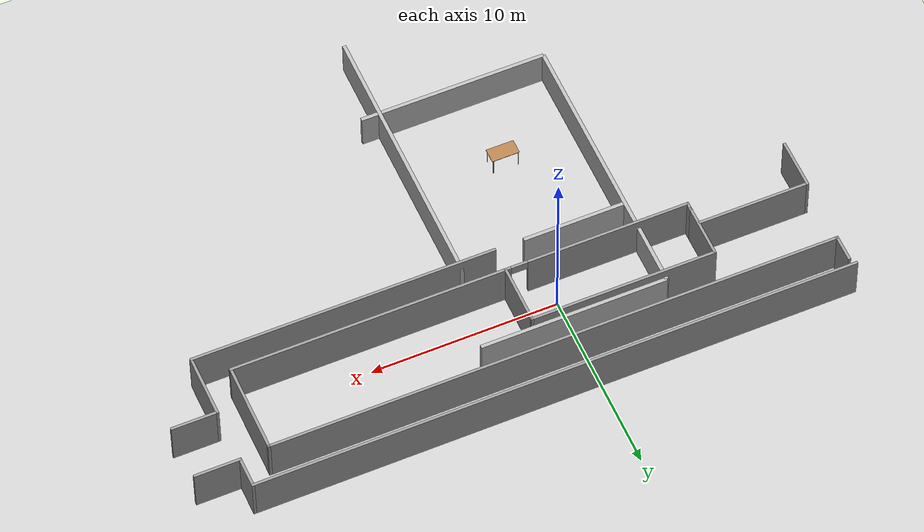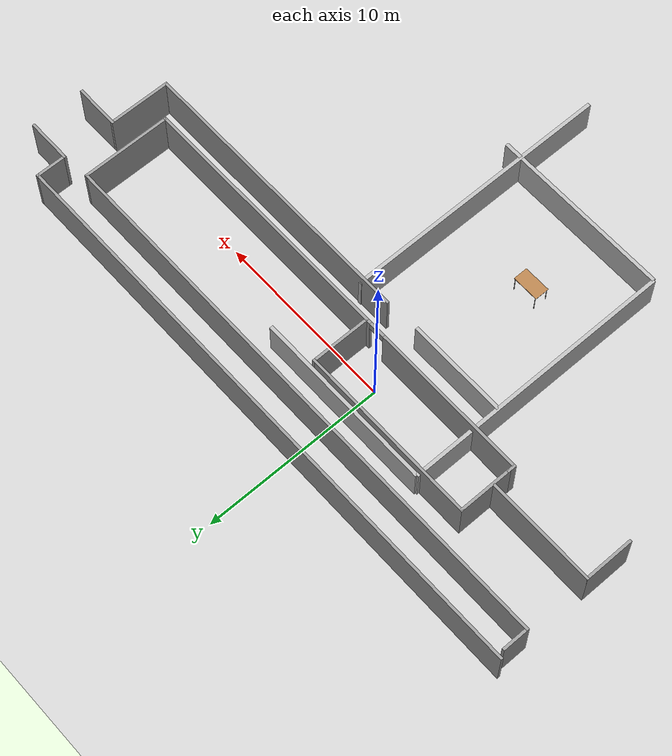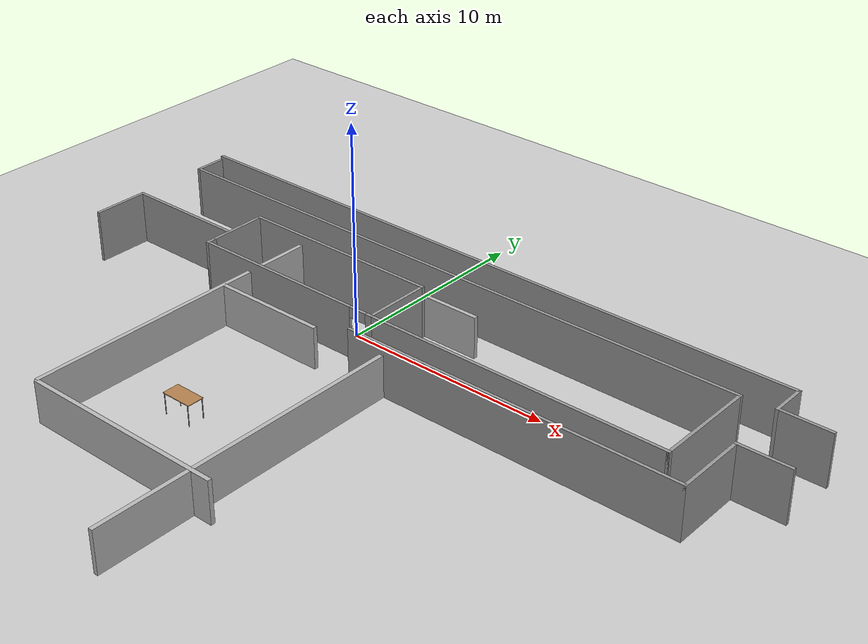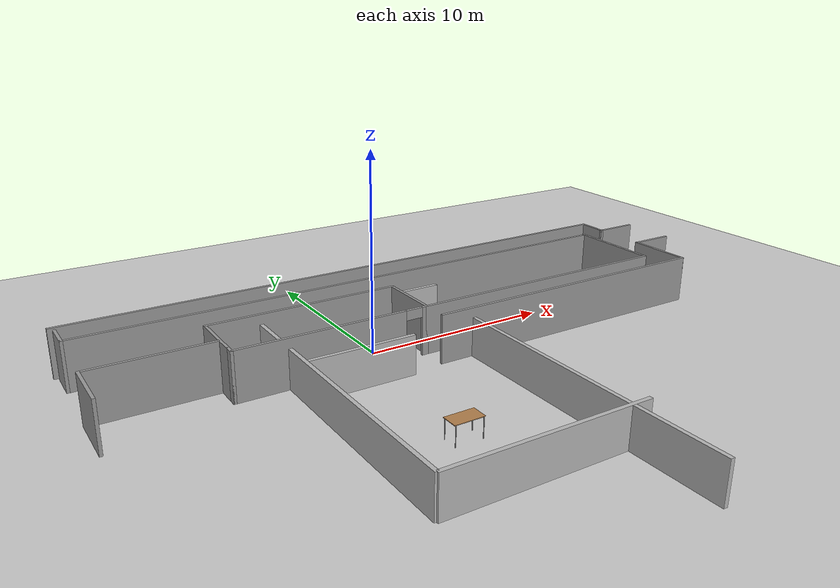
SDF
<sdf version="1.6">
 <world name="default">
  <model name="ground_plane">
   <static>1</static>
   <link name="link">
    <collision name="collision">
     <geometry><plane><normal>0 0 1</normal><size>100 100</size></plane></geometry>
     <surface><friction><ode><mu>100</mu><mu2>50</mu2></ode></friction></surface>
    </collision>
    <visual name="visual">
     <cast_shadows>0</cast_shadows>
     <geometry><plane><normal>0 0 1</normal><size>100 100</size></plane></geometry>
     <material>
      <script><uri>file://media/materials/scripts/gazebo.material</uri><name>Gazebo/Grey</name></script>
     </material>
    </visual>
   </link>
  </model>
  <model name="Untitled">
   <link name="Wall_20">
    <pose>-2.30407 -1.00044 0 0 -0 1.5708</pose>
    <visual name="Wall_20_Visual">
     <pose>0 0 1.25 0 -0 0</pose>
     <geometry><box><size>3.25 0.15 2.5</size></box></geometry>
     <material>
      <script><uri>file://media/materials/scripts/gazebo.material</uri><name>Gazebo/Grey</name></script>
      <ambient>1 1 1 1</ambient>
      <shader type="pixel"/>
      <diffuse>0.7 0.7 0.7 1</diffuse>
      <specular>0.01 0.01 0.01 1</specular>
      <emissive>0 0 0 1</emissive>
     </material>
     <meta><layer>0</layer></meta>
    </visual>
    <collision name="Wall_20_Collision">
     <pose>0 0 1.25 0 -0 0</pose>
     <geometry><box><size>3.25 0.15 2.5</size></box></geometry>
     <surface>
      <friction>
       <ode><mu>1</mu><mu2>1</mu2><fdir1>0 0 0</fdir1><slip1>0</slip1><slip2>0</slip2></ode>
       <torsional>
        <coefficient>1</coefficient>
        <patch_radius>0</patch_radius>
        <surface_radius>0</surface_radius>
        <use_patch_radius>1</use_patch_radius>
        <ode><slip>0</slip></ode>
       </torsional>
      </friction>
      <bounce><restitution_coefficient>0</restitution_coefficient><threshold>1e+06</threshold></bounce>
      <contact>
       <collide_without_contact>0</collide_without_contact>
       <collide_without_contact_bitmask>1</collide_without_contact_bitmask>
       <collide_bitmask>1</collide_bitmask>
       <ode>
        <soft_cfm>0</soft_cfm>
        <soft_erp>0.2</soft_erp>
        <kp>1e+13</kp>
        <kd>1</kd>
        <max_vel>0.01</max_vel>
        <min_depth>0</min_depth>
       </ode>
       <bullet>
        <split_impulse>1</split_impulse>
        <split_impulse_penetration_threshold>-0.01</split_impulse_penetration_threshold>
        <soft_cfm>0</soft_cfm>
        <soft_erp>0.2</soft_erp>
        <kp>1e+13</kp>
        <kd>1</kd>
       </bullet>
      </contact>
     </surface>
    </collision>
   </link>
   <link name="Wall_21">
    <pose>-7.22907 0.549559 0 0 -0 3.14159</pose>
    <visual name="Wall_21_Visual">
     <pose>0 0 1.25 0 -0 0</pose>
     <geometry><box><size>10 0.15 2.5</size></box></geometry>
     <material>
      <script><uri>file://media/materials/scripts/gazebo.material</uri><name>Gazebo/Grey</name></script>
      <ambient>1 1 1 1</ambient>
      <shader type="pixel"/>
      <diffuse>0.7 0.7 0.7 1</diffuse>
      <specular>0.01 0.01 0.01 1</specular>
      <emissive>0 0 0 1</emissive>
     </material>
     <meta><layer>0</layer></meta>
    </visual>
    <collision name="Wall_21_Collision">
     <pose>0 0 1.25 0 -0 0</pose>
     <geometry><box><size>10 0.15 2.5</size></box></geometry>
     <surface>
      <friction>
       <ode><mu>1</mu><mu2>1</mu2><fdir1>0 0 0</fdir1><slip1>0</slip1><slip2>0</slip2></ode>
       <torsional>
        <coefficient>1</coefficient>
        <patch_radius>0</patch_radius>
        <surface_radius>0</surface_radius>
        <use_patch_radius>1</use_patch_radius>
        <ode><slip>0</slip></ode>
       </torsional>
      </friction>
      <bounce><restitution_coefficient>0</restitution_coefficient><threshold>1e+06</threshold></bounce>
      <contact>
       <collide_without_contact>0</collide_without_contact>
       <collide_without_contact_bitmask>1</collide_without_contact_bitmask>
       <collide_bitmask>1</collide_bitmask>
       <ode>
        <soft_cfm>0</soft_cfm>
        <soft_erp>0.2</soft_erp>
        <kp>1e+13</kp>
        <kd>1</kd>
        <max_vel>0.01</max_vel>
        <min_depth>0</min_depth>
       </ode>
       <bullet>
        <split_impulse>1</split_impulse>
        <split_impulse_penetration_threshold>-0.01</split_impulse_penetration_threshold>
        <soft_cfm>0</soft_cfm>
        <soft_erp>0.2</soft_erp>
        <kp>1e+13</kp>
        <kd>1</kd>
       </bullet>
      </contact>
     </surface>
    </collision>
   </link>
   <link name="Wall_22">
    <pose>-12.1541 -0.875442 0 0 0 -1.5708</pose>
    <visual name="Wall_22_Visual">
     <pose>0 0 1.25 0 -0 0</pose>
     <geometry><box><size>3 0.15 2.5</size></box></geometry>
     <material>
      <script><uri>file://media/materials/scripts/gazebo.material</uri><name>Gazebo/Grey</name></script>
      <ambient>1 1 1 1</ambient>
      <shader type="pixel"/>
      <diffuse>0.7 0.7 0.7 1</diffuse>
      <specular>0.01 0.01 0.01 1</specular>
      <emissive>0 0 0 1</emissive>
     </material>
     <meta><layer>0</layer></meta>
    </visual>
    <collision name="Wall_22_Collision">
     <pose>0 0 1.25 0 -0 0</pose>
     <geometry><box><size>3 0.15 2.5</size></box></geometry>
     <surface>
      <friction>
       <ode><mu>1</mu><mu2>1</mu2><fdir1>0 0 0</fdir1><slip1>0</slip1><slip2>0</slip2></ode>
       <torsional>
        <coefficient>1</coefficient>
        <patch_radius>0</patch_radius>
        <surface_radius>0</surface_radius>
        <use_patch_radius>1</use_patch_radius>
        <ode><slip>0</slip></ode>
       </torsional>
      </friction>
      <bounce><restitution_coefficient>0</restitution_coefficient><threshold>1e+06</threshold></bounce>
      <contact>
       <collide_without_contact>0</collide_without_contact>
       <collide_without_contact_bitmask>1</collide_without_contact_bitmask>
       <collide_bitmask>1</collide_bitmask>
       <ode>
        <soft_cfm>0</soft_cfm>
        <soft_erp>0.2</soft_erp>
        <kp>1e+13</kp>
        <kd>1</kd>
        <max_vel>0.01</max_vel>
        <min_depth>0</min_depth>
       </ode>
       <bullet>
        <split_impulse>1</split_impulse>
        <split_impulse_penetration_threshold>-0.01</split_impulse_penetration_threshold>
        <soft_cfm>0</soft_cfm>
        <soft_erp>0.2</soft_erp>
        <kp>1e+13</kp>
        <kd>1</kd>
       </bullet>
      </contact>
     </surface>
    </collision>
   </link>
   <link name="Wall_23">
    <pose>-12.1541 -2.47544 0 0 0 -1.5708</pose>
    <visual name="Wall_23_Visual">
     <pose>0 0 1.25 0 -0 0</pose>
     <geometry><box><size>0.5 0.15 2.5</size></box></geometry>
     <material>
      <script><uri>file://media/materials/scripts/gazebo.material</uri><name>Gazebo/Grey</name></script>
      <ambient>1 1 1 1</ambient>
      <shader type="pixel"/>
      <diffuse>0.7 0.7 0.7 1</diffuse>
      <specular>0.01 0.01 0.01 1</specular>
      <emissive>0 0 0 1</emissive>
     </material>
     <meta><layer>0</layer></meta>
    </visual>
    <collision name="Wall_23_Collision">
     <pose>0 0 1.25 0 -0 0</pose>
     <geometry><box><size>0.5 0.15 2.5</size></box></geometry>
     <surface>
      <friction>
       <ode><mu>1</mu><mu2>1</mu2><fdir1>0 0 0</fdir1><slip1>0</slip1><slip2>0</slip2></ode>
       <torsional>
        <coefficient>1</coefficient>
        <patch_radius>0</patch_radius>
        <surface_radius>0</surface_radius>
        <use_patch_radius>1</use_patch_radius>
        <ode><slip>0</slip></ode>
       </torsional>
      </friction>
      <bounce><restitution_coefficient>0</restitution_coefficient><threshold>1e+06</threshold></bounce>
      <contact>
       <collide_without_contact>0</collide_without_contact>
       <collide_without_contact_bitmask>1</collide_without_contact_bitmask>
       <collide_bitmask>1</collide_bitmask>
       <ode>
        <soft_cfm>0</soft_cfm>
        <soft_erp>0.2</soft_erp>
        <kp>1e+13</kp>
        <kd>1</kd>
        <max_vel>0.01</max_vel>
        <min_depth>0</min_depth>
       </ode>
       <bullet>
        <split_impulse>1</split_impulse>
        <split_impulse_penetration_threshold>-0.01</split_impulse_penetration_threshold>
        <soft_cfm>0</soft_cfm>
        <soft_erp>0.2</soft_erp>
        <kp>1e+13</kp>
        <kd>1</kd>
       </bullet>
      </contact>
     </surface>
    </collision>
   </link>
   <link name="Wall_24">
    <pose>-7.22907 -2.65044 0 0 -0 0</pose>
    <visual name="Wall_24_Visual_1">
     <pose>4.82444 0 1.25 0 -0 0</pose>
     <geometry><box><size>0.351111 0.15 2.5</size></box></geometry>
     <material>
      <script><uri>file://media/materials/scripts/gazebo.material</uri><name>Gazebo/Grey</name></script>
      <ambient>1 1 1 1</ambient>
      <shader type="pixel"/>
      <diffuse>0.7 0.7 0.7 1</diffuse>
      <specular>0.01 0.01 0.01 1</specular>
      <emissive>0 0 0 1</emissive>
     </material>
     <meta><layer>0</layer></meta>
    </visual>
    <visual name="Wall_24_Visual_2">
     <pose>4.19889 0 2.25 0 -0 0</pose>
     <geometry><box><size>0.9 0.15 0.5</size></box></geometry>
     <material>
      <script><uri>file://media/materials/scripts/gazebo.material</uri><name>Gazebo/Grey</name></script>
      <ambient>1 1 1 1</ambient>
      <shader type="pixel"/>
      <diffuse>0.7 0.7 0.7 1</diffuse>
      <specular>0.01 0.01 0.01 1</specular>
      <emissive>0 0 0 1</emissive>
     </material>
     <meta><layer>0</layer></meta>
    </visual>
    <visual name="Wall_24_Visual_0">
     <pose>-0.625555 0 1.25 0 -0 0</pose>
     <geometry><box><size>8.74889 0.15 2.5</size></box></geometry>
     <material>
      <script><uri>file://media/materials/scripts/gazebo.material</uri><name>Gazebo/Grey</name></script>
      <ambient>1 1 1 1</ambient>
      <shader type="pixel"/>
      <diffuse>0.7 0.7 0.7 1</diffuse>
      <specular>0.01 0.01 0.01 1</specular>
      <emissive>0 0 0 1</emissive>
     </material>
     <meta><layer>0</layer></meta>
    </visual>
    <collision name="Wall_24_Collision_2">
     <pose>4.19889 0 2.25 0 -0 0</pose>
     <geometry><box><size>0.9 0.15 0.5</size></box></geometry>
     <surface>
      <friction>
       <ode><mu>1</mu><mu2>1</mu2><fdir1>0 0 0</fdir1><slip1>0</slip1><slip2>0</slip2></ode>
       <torsional>
        <coefficient>1</coefficient>
        <patch_radius>0</patch_radius>
        <surface_radius>0</surface_radius>
        <use_patch_radius>1</use_patch_radius>
        <ode><slip>0</slip></ode>
       </torsional>
      </friction>
      <bounce><restitution_coefficient>0</restitution_coefficient><threshold>1e+06</threshold></bounce>
      <contact>
       <collide_without_contact>0</collide_without_contact>
       <collide_without_contact_bitmask>1</collide_without_contact_bitmask>
       <collide_bitmask>1</collide_bitmask>
       <ode>
        <soft_cfm>0</soft_cfm>
        <soft_erp>0.2</soft_erp>
        <kp>1e+13</kp>
        <kd>1</kd>
        <max_vel>0.01</max_vel>
        <min_depth>0</min_depth>
       </ode>
       <bullet>
        <split_impulse>1</split_impulse>
        <split_impulse_penetration_threshold>-0.01</split_impulse_penetration_threshold>
        <soft_cfm>0</soft_cfm>
        <soft_erp>0.2</soft_erp>
        <kp>1e+13</kp>
        <kd>1</kd>
       </bullet>
      </contact>
     </surface>
    </collision>
    <collision name="Wall_24_Collision_0">
     <pose>-0.625555 0 1.25 0 -0 0</pose>
     <geometry><box><size>8.74889 0.15 2.5</size></box></geometry>
     <surface>
      <friction>
       <ode><mu>1</mu><mu2>1</mu2><fdir1>0 0 0</fdir1><slip1>0</slip1><slip2>0</slip2></ode>
       <torsional>
        <coefficient>1</coefficient>
        <patch_radius>0</patch_radius>
        <surface_radius>0</surface_radius>
        <use_patch_radius>1</use_patch_radius>
        <ode><slip>0</slip></ode>
       </torsional>
      </friction>
      <bounce><restitution_coefficient>0</restitution_coefficient><threshold>1e+06</threshold></bounce>
      <contact>
       <collide_without_contact>0</collide_without_contact>
       <collide_without_contact_bitmask>1</collide_without_contact_bitmask>
       <collide_bitmask>1</collide_bitmask>
       <ode>
        <soft_cfm>0</soft_cfm>
        <soft_erp>0.2</soft_erp>
        <kp>1e+13</kp>
        <kd>1</kd>
        <max_vel>0.01</max_vel>
        <min_depth>0</min_depth>
       </ode>
       <bullet>
        <split_impulse>1</split_impulse>
        <split_impulse_penetration_threshold>-0.01</split_impulse_penetration_threshold>
        <soft_cfm>0</soft_cfm>
        <soft_erp>0.2</soft_erp>
        <kp>1e+13</kp>
        <kd>1</kd>
       </bullet>
      </contact>
     </surface>
    </collision>
    <collision name="Wall_24_Collision_1">
     <pose>4.82444 0 1.25 0 -0 0</pose>
     <geometry><box><size>0.351111 0.15 2.5</size></box></geometry>
     <surface>
      <friction>
       <ode><mu>1</mu><mu2>1</mu2><fdir1>0 0 0</fdir1><slip1>0</slip1><slip2>0</slip2></ode>
       <torsional>
        <coefficient>1</coefficient>
        <patch_radius>0</patch_radius>
        <surface_radius>0</surface_radius>
        <use_patch_radius>1</use_patch_radius>
        <ode><slip>0</slip></ode>
       </torsional>
      </friction>
      <bounce><restitution_coefficient>0</restitution_coefficient><threshold>1e+06</threshold></bounce>
      <contact>
       <collide_without_contact>0</collide_without_contact>
       <collide_without_contact_bitmask>1</collide_without_contact_bitmask>
       <collide_bitmask>1</collide_bitmask>
       <ode>
        <soft_cfm>0</soft_cfm>
        <soft_erp>0.2</soft_erp>
        <kp>1e+13</kp>
        <kd>1</kd>
        <max_vel>0.01</max_vel>
        <min_depth>0</min_depth>
       </ode>
       <bullet>
        <split_impulse>1</split_impulse>
        <split_impulse_penetration_threshold>-0.01</split_impulse_penetration_threshold>
        <soft_cfm>0</soft_cfm>
        <soft_erp>0.2</soft_erp>
        <kp>1e+13</kp>
        <kd>1</kd>
       </bullet>
      </contact>
     </surface>
    </collision>
   </link>
   <link name="Wall_29">
    <pose>-18.1117 -2.66327 0 0 -0 1.5708</pose>
    <visual name="Wall_29_Visual">
     <pose>0 0 1.25 0 -0 0</pose>
     <geometry><box><size>2.75 0.15 2.5</size></box></geometry>
     <material>
      <script><uri>file://media/materials/scripts/gazebo.material</uri><name>Gazebo/Grey</name></script>
      <ambient>1 1 1 1</ambient>
      <shader type="pixel"/>
      <diffuse>0.7 0.7 0.7 1</diffuse>
      <specular>0.01 0.01 0.01 1</specular>
      <emissive>0 0 0 1</emissive>
     </material>
     <meta><layer>0</layer></meta>
    </visual>
    <collision name="Wall_29_Collision">
     <pose>0 0 1.25 0 -0 0</pose>
     <geometry><box><size>2.75 0.15 2.5</size></box></geometry>
     <surface>
      <friction>
       <ode><mu>1</mu><mu2>1</mu2><fdir1>0 0 0</fdir1><slip1>0</slip1><slip2>0</slip2></ode>
       <torsional>
        <coefficient>1</coefficient>
        <patch_radius>0</patch_radius>
        <surface_radius>0</surface_radius>
        <use_patch_radius>1</use_patch_radius>
        <ode><slip>0</slip></ode>
       </torsional>
      </friction>
      <bounce><restitution_coefficient>0</restitution_coefficient><threshold>1e+06</threshold></bounce>
      <contact>
       <collide_without_contact>0</collide_without_contact>
       <collide_without_contact_bitmask>1</collide_without_contact_bitmask>
       <collide_bitmask>1</collide_bitmask>
       <ode>
        <soft_cfm>0</soft_cfm>
        <soft_erp>0.2</soft_erp>
        <kp>1e+13</kp>
        <kd>1</kd>
        <max_vel>0.01</max_vel>
        <min_depth>0</min_depth>
       </ode>
       <bullet>
        <split_impulse>1</split_impulse>
        <split_impulse_penetration_threshold>-0.01</split_impulse_penetration_threshold>
        <soft_cfm>0</soft_cfm>
        <soft_erp>0.2</soft_erp>
        <kp>1e+13</kp>
        <kd>1</kd>
       </bullet>
      </contact>
     </surface>
    </collision>
   </link>
   <link name="Wall_30">
    <pose>-15.1867 -1.36327 0 0 -0 0</pose>
    <visual name="Wall_30_Visual">
     <pose>0 0 1.25 0 -0 0</pose>
     <geometry><box><size>6 0.15 2.5</size></box></geometry>
     <material>
      <script><uri>file://media/materials/scripts/gazebo.material</uri><name>Gazebo/Grey</name></script>
      <ambient>1 1 1 1</ambient>
      <shader type="pixel"/>
      <diffuse>0.7 0.7 0.7 1</diffuse>
      <specular>0.01 0.01 0.01 1</specular>
      <emissive>0 0 0 1</emissive>
     </material>
     <meta><layer>0</layer></meta>
    </visual>
    <collision name="Wall_30_Collision">
     <pose>0 0 1.25 0 -0 0</pose>
     <geometry><box><size>6 0.15 2.5</size></box></geometry>
     <surface>
      <friction>
       <ode><mu>1</mu><mu2>1</mu2><fdir1>0 0 0</fdir1><slip1>0</slip1><slip2>0</slip2></ode>
       <torsional>
        <coefficient>1</coefficient>
        <patch_radius>0</patch_radius>
        <surface_radius>0</surface_radius>
        <use_patch_radius>1</use_patch_radius>
        <ode><slip>0</slip></ode>
       </torsional>
      </friction>
      <bounce><restitution_coefficient>0</restitution_coefficient><threshold>1e+06</threshold></bounce>
      <contact>
       <collide_without_contact>0</collide_without_contact>
       <collide_without_contact_bitmask>1</collide_without_contact_bitmask>
       <collide_bitmask>1</collide_bitmask>
       <ode>
        <soft_cfm>0</soft_cfm>
        <soft_erp>0.2</soft_erp>
        <kp>1e+13</kp>
        <kd>1</kd>
        <max_vel>0.01</max_vel>
        <min_depth>0</min_depth>
       </ode>
       <bullet>
        <split_impulse>1</split_impulse>
        <split_impulse_penetration_threshold>-0.01</split_impulse_penetration_threshold>
        <soft_cfm>0</soft_cfm>
        <soft_erp>0.2</soft_erp>
        <kp>1e+13</kp>
        <kd>1</kd>
       </bullet>
      </contact>
     </surface>
    </collision>
   </link>
   <link name="Wall_41">
    <pose>5.78827 -3.96327 0 0 -0 0</pose>
    <visual name="Wall_41_Visual">
     <pose>0 0 1.25 0 -0 0</pose>
     <geometry><box><size>16.25 0.15 2.5</size></box></geometry>
     <material>
      <script><uri>file://media/materials/scripts/gazebo.material</uri><name>Gazebo/Grey</name></script>
      <ambient>1 1 1 1</ambient>
      <shader type="pixel"/>
      <diffuse>0.7 0.7 0.7 1</diffuse>
      <specular>0.01 0.01 0.01 1</specular>
      <emissive>0 0 0 1</emissive>
     </material>
     <meta><layer>0</layer></meta>
    </visual>
    <collision name="Wall_41_Collision">
     <pose>0 0 1.25 0 -0 0</pose>
     <geometry><box><size>16.25 0.15 2.5</size></box></geometry>
     <surface>
      <friction>
       <ode><mu>1</mu><mu2>1</mu2><fdir1>0 0 0</fdir1><slip1>0</slip1><slip2>0</slip2></ode>
       <torsional>
        <coefficient>1</coefficient>
        <patch_radius>0</patch_radius>
        <surface_radius>0</surface_radius>
        <use_patch_radius>1</use_patch_radius>
        <ode><slip>0</slip></ode>
       </torsional>
      </friction>
      <bounce><restitution_coefficient>0</restitution_coefficient><threshold>1e+06</threshold></bounce>
      <contact>
       <collide_without_contact>0</collide_without_contact>
       <collide_without_contact_bitmask>1</collide_without_contact_bitmask>
       <collide_bitmask>1</collide_bitmask>
       <ode>
        <soft_cfm>0</soft_cfm>
        <soft_erp>0.2</soft_erp>
        <kp>1e+13</kp>
        <kd>1</kd>
        <max_vel>0.01</max_vel>
        <min_depth>0</min_depth>
       </ode>
       <bullet>
        <split_impulse>1</split_impulse>
        <split_impulse_penetration_threshold>-0.01</split_impulse_penetration_threshold>
        <soft_cfm>0</soft_cfm>
        <soft_erp>0.2</soft_erp>
        <kp>1e+13</kp>
        <kd>1</kd>
       </bullet>
      </contact>
     </surface>
    </collision>
   </link>
   <link name="Wall_42">
    <pose>13.8383 -2.28827 0 0 -0 1.5708</pose>
    <visual name="Wall_42_Visual">
     <pose>0 0 1.25 0 -0 0</pose>
     <geometry><box><size>3.5 0.15 2.5</size></box></geometry>
     <material>
      <script><uri>file://media/materials/scripts/gazebo.material</uri><name>Gazebo/Grey</name></script>
      <ambient>1 1 1 1</ambient>
      <shader type="pixel"/>
      <diffuse>0.7 0.7 0.7 1</diffuse>
      <specular>0.01 0.01 0.01 1</specular>
      <emissive>0 0 0 1</emissive>
     </material>
     <meta><layer>0</layer></meta>
    </visual>
    <collision name="Wall_42_Collision">
     <pose>0 0 1.25 0 -0 0</pose>
     <geometry><box><size>3.5 0.15 2.5</size></box></geometry>
     <surface>
      <friction>
       <ode><mu>1</mu><mu2>1</mu2><fdir1>0 0 0</fdir1><slip1>0</slip1><slip2>0</slip2></ode>
       <torsional>
        <coefficient>1</coefficient>
        <patch_radius>0</patch_radius>
        <surface_radius>0</surface_radius>
        <use_patch_radius>1</use_patch_radius>
        <ode><slip>0</slip></ode>
       </torsional>
      </friction>
      <bounce><restitution_coefficient>0</restitution_coefficient><threshold>1e+06</threshold></bounce>
      <contact>
       <collide_without_contact>0</collide_without_contact>
       <collide_without_contact_bitmask>1</collide_without_contact_bitmask>
       <collide_bitmask>1</collide_bitmask>
       <ode>
        <soft_cfm>0</soft_cfm>
        <soft_erp>0.2</soft_erp>
        <kp>1e+13</kp>
        <kd>1</kd>
        <max_vel>0.01</max_vel>
        <min_depth>0</min_depth>
       </ode>
       <bullet>
        <split_impulse>1</split_impulse>
        <split_impulse_penetration_threshold>-0.01</split_impulse_penetration_threshold>
        <soft_cfm>0</soft_cfm>
        <soft_erp>0.2</soft_erp>
        <kp>1e+13</kp>
        <kd>1</kd>
       </bullet>
      </contact>
     </surface>
    </collision>
   </link>
   <link name="Wall_43">
    <pose>15.0133 -0.613272 0 0 -0 0</pose>
    <visual name="Wall_43_Visual">
     <pose>0 0 1.25 0 -0 0</pose>
     <geometry><box><size>2.5 0.15 2.5</size></box></geometry>
     <material>
      <script><uri>file://media/materials/scripts/gazebo.material</uri><name>Gazebo/Grey</name></script>
      <ambient>1 1 1 1</ambient>
      <shader type="pixel"/>
      <diffuse>0.7 0.7 0.7 1</diffuse>
      <specular>0.01 0.01 0.01 1</specular>
      <emissive>0 0 0 1</emissive>
     </material>
     <meta><layer>0</layer></meta>
    </visual>
    <collision name="Wall_43_Collision">
     <pose>0 0 1.25 0 -0 0</pose>
     <geometry><box><size>2.5 0.15 2.5</size></box></geometry>
     <surface>
      <friction>
       <ode><mu>1</mu><mu2>1</mu2><fdir1>0 0 0</fdir1><slip1>0</slip1><slip2>0</slip2></ode>
       <torsional>
        <coefficient>1</coefficient>
        <patch_radius>0</patch_radius>
        <surface_radius>0</surface_radius>
        <use_patch_radius>1</use_patch_radius>
        <ode><slip>0</slip></ode>
       </torsional>
      </friction>
      <bounce><restitution_coefficient>0</restitution_coefficient><threshold>1e+06</threshold></bounce>
      <contact>
       <collide_without_contact>0</collide_without_contact>
       <collide_without_contact_bitmask>1</collide_without_contact_bitmask>
       <collide_bitmask>1</collide_bitmask>
       <ode>
        <soft_cfm>0</soft_cfm>
        <soft_erp>0.2</soft_erp>
        <kp>1e+13</kp>
        <kd>1</kd>
        <max_vel>0.01</max_vel>
        <min_depth>0</min_depth>
       </ode>
       <bullet>
        <split_impulse>1</split_impulse>
        <split_impulse_penetration_threshold>-0.01</split_impulse_penetration_threshold>
        <soft_cfm>0</soft_cfm>
        <soft_erp>0.2</soft_erp>
        <kp>1e+13</kp>
        <kd>1</kd>
       </bullet>
      </contact>
     </surface>
    </collision>
   </link>
   <link name="Wall_52">
    <pose>15.0133 2.33673 0 0 -0 3.14159</pose>
    <visual name="Wall_52_Visual">
     <pose>0 0 1.25 0 -0 0</pose>
     <geometry><box><size>2.5 0.15 2.5</size></box></geometry>
     <material>
      <script><uri>file://media/materials/scripts/gazebo.material</uri><name>Gazebo/Grey</name></script>
      <ambient>1 1 1 1</ambient>
      <shader type="pixel"/>
      <diffuse>0.7 0.7 0.7 1</diffuse>
      <specular>0.01 0.01 0.01 1</specular>
      <emissive>0 0 0 1</emissive>
     </material>
     <meta><layer>0</layer></meta>
    </visual>
    <collision name="Wall_52_Collision">
     <pose>0 0 1.25 0 -0 0</pose>
     <geometry><box><size>2.5 0.15 2.5</size></box></geometry>
     <surface>
      <friction>
       <ode><mu>1</mu><mu2>1</mu2><fdir1>0 0 0</fdir1><slip1>0</slip1><slip2>0</slip2></ode>
       <torsional>
        <coefficient>1</coefficient>
        <patch_radius>0</patch_radius>
        <surface_radius>0</surface_radius>
        <use_patch_radius>1</use_patch_radius>
        <ode><slip>0</slip></ode>
       </torsional>
      </friction>
      <bounce><restitution_coefficient>0</restitution_coefficient><threshold>1e+06</threshold></bounce>
      <contact>
       <collide_without_contact>0</collide_without_contact>
       <collide_without_contact_bitmask>1</collide_without_contact_bitmask>
       <collide_bitmask>1</collide_bitmask>
       <ode>
        <soft_cfm>0</soft_cfm>
        <soft_erp>0.2</soft_erp>
        <kp>1e+13</kp>
        <kd>1</kd>
        <max_vel>0.01</max_vel>
        <min_depth>0</min_depth>
       </ode>
       <bullet>
        <split_impulse>1</split_impulse>
        <split_impulse_penetration_threshold>-0.01</split_impulse_penetration_threshold>
        <soft_cfm>0</soft_cfm>
        <soft_erp>0.2</soft_erp>
        <kp>1e+13</kp>
        <kd>1</kd>
       </bullet>
      </contact>
     </surface>
    </collision>
   </link>
   <link name="Wall_53">
    <pose>13.8383 3.13673 0 0 -0 1.5708</pose>
    <visual name="Wall_53_Visual">
     <pose>0 0 1.25 0 -0 0</pose>
     <geometry><box><size>1.75 0.15 2.5</size></box></geometry>
     <material>
      <script><uri>file://media/materials/scripts/gazebo.material</uri><name>Gazebo/Grey</name></script>
      <ambient>1 1 1 1</ambient>
      <shader type="pixel"/>
      <diffuse>0.7 0.7 0.7 1</diffuse>
      <specular>0.01 0.01 0.01 1</specular>
      <emissive>0 0 0 1</emissive>
     </material>
     <meta><layer>0</layer></meta>
    </visual>
    <collision name="Wall_53_Collision">
     <pose>0 0 1.25 0 -0 0</pose>
     <geometry><box><size>1.75 0.15 2.5</size></box></geometry>
     <surface>
      <friction>
       <ode><mu>1</mu><mu2>1</mu2><fdir1>0 0 0</fdir1><slip1>0</slip1><slip2>0</slip2></ode>
       <torsional>
        <coefficient>1</coefficient>
        <patch_radius>0</patch_radius>
        <surface_radius>0</surface_radius>
        <use_patch_radius>1</use_patch_radius>
        <ode><slip>0</slip></ode>
       </torsional>
      </friction>
      <bounce><restitution_coefficient>0</restitution_coefficient><threshold>1e+06</threshold></bounce>
      <contact>
       <collide_without_contact>0</collide_without_contact>
       <collide_without_contact_bitmask>1</collide_without_contact_bitmask>
       <collide_bitmask>1</collide_bitmask>
       <ode>
        <soft_cfm>0</soft_cfm>
        <soft_erp>0.2</soft_erp>
        <kp>1e+13</kp>
        <kd>1</kd>
        <max_vel>0.01</max_vel>
        <min_depth>0</min_depth>
       </ode>
       <bullet>
        <split_impulse>1</split_impulse>
        <split_impulse_penetration_threshold>-0.01</split_impulse_penetration_threshold>
        <soft_cfm>0</soft_cfm>
        <soft_erp>0.2</soft_erp>
        <kp>1e+13</kp>
        <kd>1</kd>
       </bullet>
      </contact>
     </surface>
    </collision>
   </link>
   <link name="Wall_54">
    <pose>-2.21173 3.93673 0 0 -0 3.14159</pose>
    <visual name="Wall_54_Visual">
     <pose>0 0 1.25 0 -0 0</pose>
     <geometry><box><size>32.25 0.15 2.5</size></box></geometry>
     <material>
      <script><uri>file://media/materials/scripts/gazebo.material</uri><name>Gazebo/Grey</name></script>
      <ambient>1 1 1 1</ambient>
      <shader type="pixel"/>
      <diffuse>0.7 0.7 0.7 1</diffuse>
      <specular>0.01 0.01 0.01 1</specular>
      <emissive>0 0 0 1</emissive>
     </material>
     <meta><layer>0</layer></meta>
    </visual>
    <collision name="Wall_54_Collision">
     <pose>0 0 1.25 0 -0 0</pose>
     <geometry><box><size>32.25 0.15 2.5</size></box></geometry>
     <surface>
      <friction>
       <ode><mu>1</mu><mu2>1</mu2><fdir1>0 0 0</fdir1><slip1>0</slip1><slip2>0</slip2></ode>
       <torsional>
        <coefficient>1</coefficient>
        <patch_radius>0</patch_radius>
        <surface_radius>0</surface_radius>
        <use_patch_radius>1</use_patch_radius>
        <ode><slip>0</slip></ode>
       </torsional>
      </friction>
      <bounce><restitution_coefficient>0</restitution_coefficient><threshold>1e+06</threshold></bounce>
      <contact>
       <collide_without_contact>0</collide_without_contact>
       <collide_without_contact_bitmask>1</collide_without_contact_bitmask>
       <collide_bitmask>1</collide_bitmask>
       <ode>
        <soft_cfm>0</soft_cfm>
        <soft_erp>0.2</soft_erp>
        <kp>1e+13</kp>
        <kd>1</kd>
        <max_vel>0.01</max_vel>
        <min_depth>0</min_depth>
       </ode>
       <bullet>
        <split_impulse>1</split_impulse>
        <split_impulse_penetration_threshold>-0.01</split_impulse_penetration_threshold>
        <soft_cfm>0</soft_cfm>
        <soft_erp>0.2</soft_erp>
        <kp>1e+13</kp>
        <kd>1</kd>
       </bullet>
      </contact>
     </surface>
    </collision>
   </link>
   <link name="Wall_56">
    <pose>4.99593 -2.65044 0 0 -0 0</pose>
    <visual name="Wall_56_Visual">
     <pose>0 0 1.25 0 -0 0</pose>
     <geometry><box><size>14.75 0.15 2.5</size></box></geometry>
     <material>
      <script><uri>file://media/materials/scripts/gazebo.material</uri><name>Gazebo/Grey</name></script>
      <ambient>1 1 1 1</ambient>
      <shader type="pixel"/>
      <diffuse>0.7 0.7 0.7 1</diffuse>
      <specular>0.01 0.01 0.01 1</specular>
      <emissive>0 0 0 1</emissive>
     </material>
     <meta><layer>0</layer></meta>
    </visual>
    <collision name="Wall_56_Collision">
     <pose>0 0 1.25 0 -0 0</pose>
     <geometry><box><size>14.75 0.15 2.5</size></box></geometry>
     <surface>
      <friction>
       <ode><mu>1</mu><mu2>1</mu2><fdir1>0 0 0</fdir1><slip1>0</slip1><slip2>0</slip2></ode>
       <torsional>
        <coefficient>1</coefficient>
        <patch_radius>0</patch_radius>
        <surface_radius>0</surface_radius>
        <use_patch_radius>1</use_patch_radius>
        <ode><slip>0</slip></ode>
       </torsional>
      </friction>
      <bounce><restitution_coefficient>0</restitution_coefficient><threshold>1e+06</threshold></bounce>
      <contact>
       <collide_without_contact>0</collide_without_contact>
       <collide_without_contact_bitmask>1</collide_without_contact_bitmask>
       <collide_bitmask>1</collide_bitmask>
       <ode>
        <soft_cfm>0</soft_cfm>
        <soft_erp>0.2</soft_erp>
        <kp>1e+13</kp>
        <kd>1</kd>
        <max_vel>0.01</max_vel>
        <min_depth>0</min_depth>
       </ode>
       <bullet>
        <split_impulse>1</split_impulse>
        <split_impulse_penetration_threshold>-0.01</split_impulse_penetration_threshold>
        <soft_cfm>0</soft_cfm>
        <soft_erp>0.2</soft_erp>
        <kp>1e+13</kp>
        <kd>1</kd>
       </bullet>
      </contact>
     </surface>
    </collision>
   </link>
   <link name="Wall_57">
    <pose>12.2959 -0.225441 0 0 -0 1.5708</pose>
    <visual name="Wall_57_Visual">
     <pose>0 0 1.25 0 -0 0</pose>
     <geometry><box><size>5 0.15 2.5</size></box></geometry>
     <material>
      <script><uri>file://media/materials/scripts/gazebo.material</uri><name>Gazebo/Grey</name></script>
      <ambient>1 1 1 1</ambient>
      <shader type="pixel"/>
      <diffuse>0.7 0.7 0.7 1</diffuse>
      <specular>0.01 0.01 0.01 1</specular>
      <emissive>0 0 0 1</emissive>
     </material>
     <meta><layer>0</layer></meta>
    </visual>
    <collision name="Wall_57_Collision">
     <pose>0 0 1.25 0 -0 0</pose>
     <geometry><box><size>5 0.15 2.5</size></box></geometry>
     <surface>
      <friction>
       <ode><mu>1</mu><mu2>1</mu2><fdir1>0 0 0</fdir1><slip1>0</slip1><slip2>0</slip2></ode>
       <torsional>
        <coefficient>1</coefficient>
        <patch_radius>0</patch_radius>
        <surface_radius>0</surface_radius>
        <use_patch_radius>1</use_patch_radius>
        <ode><slip>0</slip></ode>
       </torsional>
      </friction>
      <bounce><restitution_coefficient>0</restitution_coefficient><threshold>1e+06</threshold></bounce>
      <contact>
       <collide_without_contact>0</collide_without_contact>
       <collide_without_contact_bitmask>1</collide_without_contact_bitmask>
       <collide_bitmask>1</collide_bitmask>
       <ode>
        <soft_cfm>0</soft_cfm>
        <soft_erp>0.2</soft_erp>
        <kp>1e+13</kp>
        <kd>1</kd>
        <max_vel>0.01</max_vel>
        <min_depth>0</min_depth>
       </ode>
       <bullet>
        <split_impulse>1</split_impulse>
        <split_impulse_penetration_threshold>-0.01</split_impulse_penetration_threshold>
        <soft_cfm>0</soft_cfm>
        <soft_erp>0.2</soft_erp>
        <kp>1e+13</kp>
        <kd>1</kd>
       </bullet>
      </contact>
     </surface>
    </collision>
   </link>
   <link name="Wall_58">
    <pose>-2.87907 2.19956 0 0 -0 3.14159</pose>
    <visual name="Wall_58_Visual">
     <pose>0 0 1.25 0 -0 0</pose>
     <geometry><box><size>30.5 0.15 2.5</size></box></geometry>
     <material>
      <script><uri>file://media/materials/scripts/gazebo.material</uri><name>Gazebo/Grey</name></script>
      <ambient>1 1 1 1</ambient>
      <shader type="pixel"/>
      <diffuse>0.7 0.7 0.7 1</diffuse>
      <specular>0.01 0.01 0.01 1</specular>
      <emissive>0 0 0 1</emissive>
     </material>
     <meta><layer>0</layer></meta>
    </visual>
    <collision name="Wall_58_Collision">
     <pose>0 0 1.25 0 -0 0</pose>
     <geometry><box><size>30.5 0.15 2.5</size></box></geometry>
     <surface>
      <friction>
       <ode><mu>1</mu><mu2>1</mu2><fdir1>0 0 0</fdir1><slip1>0</slip1><slip2>0</slip2></ode>
       <torsional>
        <coefficient>1</coefficient>
        <patch_radius>0</patch_radius>
        <surface_radius>0</surface_radius>
        <use_patch_radius>1</use_patch_radius>
        <ode><slip>0</slip></ode>
       </torsional>
      </friction>
      <bounce><restitution_coefficient>0</restitution_coefficient><threshold>1e+06</threshold></bounce>
      <contact>
       <collide_without_contact>0</collide_without_contact>
       <collide_without_contact_bitmask>1</collide_without_contact_bitmask>
       <collide_bitmask>1</collide_bitmask>
       <ode>
        <soft_cfm>0</soft_cfm>
        <soft_erp>0.2</soft_erp>
        <kp>1e+13</kp>
        <kd>1</kd>
        <max_vel>0.01</max_vel>
        <min_depth>0</min_depth>
       </ode>
       <bullet>
        <split_impulse>1</split_impulse>
        <split_impulse_penetration_threshold>-0.01</split_impulse_penetration_threshold>
        <soft_cfm>0</soft_cfm>
        <soft_erp>0.2</soft_erp>
        <kp>1e+13</kp>
        <kd>1</kd>
       </bullet>
      </contact>
     </surface>
    </collision>
   </link>
   <link name="Wall_59">
    <pose>-18.0541 2.87456 0 0 -0 1.5708</pose>
    <visual name="Wall_59_Visual">
     <pose>0 0 1.25 0 -0 0</pose>
     <geometry><box><size>1.5 0.15 2.5</size></box></geometry>
     <material>
      <script><uri>file://media/materials/scripts/gazebo.material</uri><name>Gazebo/Grey</name></script>
      <ambient>1 1 1 1</ambient>
      <shader type="pixel"/>
      <diffuse>0.7 0.7 0.7 1</diffuse>
      <specular>0.01 0.01 0.01 1</specular>
      <emissive>0 0 0 1</emissive>
     </material>
     <meta><layer>0</layer></meta>
    </visual>
    <collision name="Wall_59_Collision">
     <pose>0 0 1.25 0 -0 0</pose>
     <geometry><box><size>1.5 0.15 2.5</size></box></geometry>
     <surface>
      <friction>
       <ode><mu>1</mu><mu2>1</mu2><fdir1>0 0 0</fdir1><slip1>0</slip1><slip2>0</slip2></ode>
       <torsional>
        <coefficient>1</coefficient>
        <patch_radius>0</patch_radius>
        <surface_radius>0</surface_radius>
        <use_patch_radius>1</use_patch_radius>
        <ode><slip>0</slip></ode>
       </torsional>
      </friction>
      <bounce><restitution_coefficient>0</restitution_coefficient><threshold>1e+06</threshold></bounce>
      <contact>
       <collide_without_contact>0</collide_without_contact>
       <collide_without_contact_bitmask>1</collide_without_contact_bitmask>
       <collide_bitmask>1</collide_bitmask>
       <ode>
        <soft_cfm>0</soft_cfm>
        <soft_erp>0.2</soft_erp>
        <kp>1e+13</kp>
        <kd>1</kd>
        <max_vel>0.01</max_vel>
        <min_depth>0</min_depth>
       </ode>
       <bullet>
        <split_impulse>1</split_impulse>
        <split_impulse_penetration_threshold>-0.01</split_impulse_penetration_threshold>
        <soft_cfm>0</soft_cfm>
        <soft_erp>0.2</soft_erp>
        <kp>1e+13</kp>
        <kd>1</kd>
       </bullet>
      </contact>
     </surface>
    </collision>
   </link>
   <static>1</static>
   <pose>4.47911 1.25459 0 0 -0 0</pose>
  </model>
  <model name="wall_1_model">
   <pose>0.0 -13.0 1.0 0.0 0.0 0.0</pose>
   <static>1</static>
   <link name="wall_1_body">
    <inertial>
     <mass>1.000000</mass>
     <inertia>
      <ixx>1.000000</ixx>
      <ixy>0.000000</ixy>
      <ixz>0.000000</ixz>
      <iyy>1.000000</iyy>
      <iyz>0.000000</iyz>
      <izz>1.000000</izz>
     </inertia>
    </inertial>
    <collision name="collision">
     <geometry><box><size>10.000000 0.200000 2.000000</size></box></geometry>
    </collision>
    <visual name="visual"><geometry><box><size>10.000000 0.200000 2.000000</size></box></geometry></visual>
    <velocity_decay><linear>0.000000</linear><angular>0.000000</angular></velocity_decay>
   </link>
  </model>
  <model name="wall_2_model">
   <pose>0.0 2.0 1.0 0.0 0.0 0.0</pose>
   <static>1</static>
   <link name="wall_2_body">
    <inertial>
     <mass>1.000000</mass>
     <inertia>
      <ixx>1.000000</ixx>
      <ixy>0.000000</ixy>
      <ixz>0.000000</ixz>
      <iyy>1.000000</iyy>
      <iyz>0.000000</iyz>
      <izz>1.000000</izz>
     </inertia>
    </inertial>
    <collision name="collision">
     <geometry><box><size>10.000000 0.200000 2.000000</size></box></geometry>
    </collision>
    <visual name="visual"><geometry><box><size>10.000000 0.200000 2.000000</size></box></geometry></visual>
    <velocity_decay><linear>0.000000</linear><angular>0.000000</angular></velocity_decay>
   </link>
  </model>
  <model name="wall_3_model">
   <pose>-5.0 -5.5 1.0 0.0 0.0 0.0</pose>
   <static>1</static>
   <link name="wall_3_body">
    <inertial>
     <mass>1.000000</mass>
     <inertia>
      <ixx>1.000000</ixx>
      <ixy>0.000000</ixy>
      <ixz>0.000000</ixz>
      <iyy>1.000000</iyy>
      <iyz>0.000000</iyz>
      <izz>1.000000</izz>
     </inertia>
    </inertial>
    <collision name="collision">
     <geometry><box><size>0.200000 15.000000 2.000000</size></box></geometry>
    </collision>
    <visual name="visual"><geometry><box><size>0.200000 15.000000 2.000000</size></box></geometry></visual>
    <velocity_decay><linear>0.000000</linear><angular>0.000000</angular></velocity_decay>
   </link>
  </model>
  <model name="wall_4_model">
   <pose>4.0 -10.1 1.0 0.0 0.0 0.0</pose>
   <static>1</static>
   <link name="wall_3_body">
    <inertial>
     <mass>1.000000</mass>
     <inertia>
      <ixx>1.000000</ixx>
      <ixy>0.000000</ixy>
      <ixz>0.000000</ixz>
      <iyy>1.000000</iyy>
      <iyz>0.000000</iyz>
      <izz>1.000000</izz>
     </inertia>
    </inertial>
    <collision name="collision">
     <geometry><box><size>0.200000 15.000000 2.000000</size></box></geometry>
    </collision>
    <visual name="visual"><geometry><box><size>0.200000 15.000000 2.000000</size></box></geometry></visual>
    <velocity_decay><linear>0.000000</linear><angular>0.000000</angular></velocity_decay>
   </link>
  </model>
  <model name="wall_5_model">
   <pose>-2.25 -3.0 1.0 0.0 0.0 0.0</pose>
   <static>1</static>
   <link name="wall_5_body">
    <inertial>
     <mass>1.000000</mass>
     <inertia>
      <ixx>1.000000</ixx>
      <ixy>0.000000</ixy>
      <ixz>0.000000</ixz>
      <iyy>1.000000</iyy>
      <iyz>0.000000</iyz>
      <izz>1.000000</izz>
     </inertia>
    </inertial>
    <collision name="collision">
     <geometry><box><size>5.500000 0.200000 2.000000</size></box></geometry>
    </collision>
    <visual name="visual"><geometry><box><size>5.500000 0.200000 2.000000</size></box></geometry></visual>
    <velocity_decay><linear>0.000000</linear><angular>0.000000</angular></velocity_decay>
   </link>
  </model>
  <model name="table">
   <static>1</static>
   <link name="link">
    <collision name="surface">
     <pose>0.000000 0.000000 1.000000 0.000000 0.000000 0.000000</pose>
     <geometry><box><size>1.500000 0.800000 0.030000</size></box></geometry>
    </collision>
    <visual name="visual1">
     <pose>0.000000 0.000000 1.000000 0.000000 0.000000 0.000000</pose>
     <geometry><box><size>1.500000 0.800000 0.030000</size></box></geometry>
     <material>
      <script><uri>file://media/materials/scripts/gazebo.material</uri><name>Gazebo/Wood</name></script>
     </material>
    </visual>
    <collision name="front_left_leg">
     <pose>0.680000 0.380000 0.500000 0.000000 0.000000 0.000000</pose>
     <geometry><cylinder><radius>0.020000</radius><length>1.000000</length></cylinder></geometry>
    </collision>
    <visual name="front_left_leg">
     <pose>0.680000 0.380000 0.500000 0.000000 0.000000 0.000000</pose>
     <geometry><cylinder><radius>0.020000</radius><length>1.000000</length></cylinder></geometry>
     <material>
      <script><uri>file://media/materials/scripts/gazebo.material</uri><name>Gazebo/Grey</name></script>
     </material>
    </visual>
    <collision name="front_right_leg">
     <pose>0.680000 -0.380000 0.500000 0.000000 0.000000 0.000000</pose>
     <geometry><cylinder><radius>0.020000</radius><length>1.000000</length></cylinder></geometry>
    </collision>
    <visual name="front_right_leg">
     <pose>0.680000 -0.380000 0.500000 0.000000 0.000000 0.000000</pose>
     <geometry><cylinder><radius>0.020000</radius><length>1.000000</length></cylinder></geometry>
     <material>
      <script><uri>file://media/materials/scripts/gazebo.material</uri><name>Gazebo/Grey</name></script>
     </material>
    </visual>
    <collision name="back_right_leg">
     <pose>-0.680000 -0.380000 0.500000 0.000000 0.000000 0.000000</pose>
     <geometry><cylinder><radius>0.020000</radius><length>1.000000</length></cylinder></geometry>
    </collision>
    <visual name="back_right_leg">
     <pose>-0.680000 -0.380000 0.500000 0.000000 0.000000 0.000000</pose>
     <geometry><cylinder><radius>0.020000</radius><length>1.000000</length></cylinder></geometry>
     <material>
      <script><uri>file://media/materials/scripts/gazebo.material</uri><name>Gazebo/Grey</name></script>
     </material>
    </visual>
    <collision name="back_left_leg">
     <pose>-0.680000 0.380000 0.500000 0.000000 0.000000 0.000000</pose>
     <geometry><cylinder><radius>0.020000</radius><length>1.000000</length></cylinder></geometry>
    </collision>
    <visual name="back_left_leg">
     <pose>-0.680000 0.380000 0.500000 0.000000 0.000000 0.000000</pose>
     <geometry><cylinder><radius>0.020000</radius><length>1.000000</length></cylinder></geometry>
     <material>
      <script><uri>file://media/materials/scripts/gazebo.material</uri><name>Gazebo/Grey</name></script>
     </material>
    </visual>
    <velocity_decay><linear>0.000000</linear><angular>0.000000</angular></velocity_decay>
   </link>
   <pose>-1.0 -9.0 0.0 0.0 0.0 0.0</pose>
  </model>
 </world>
</sdf>
